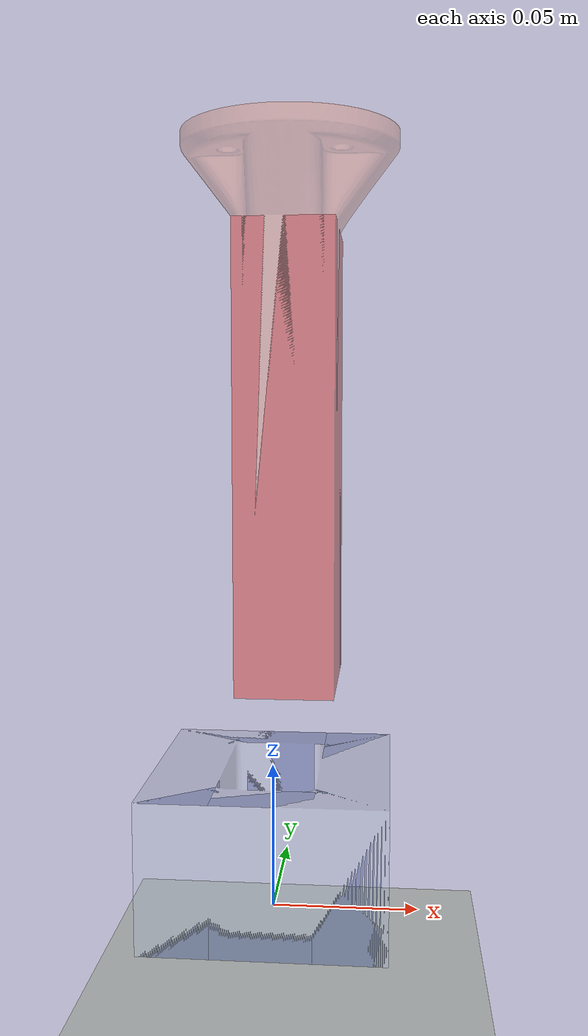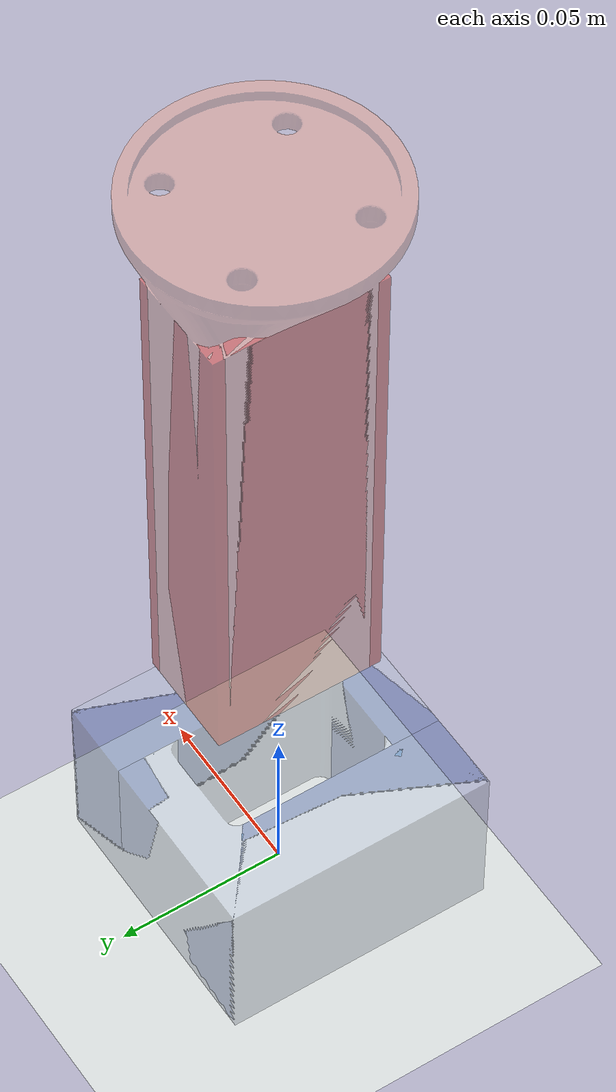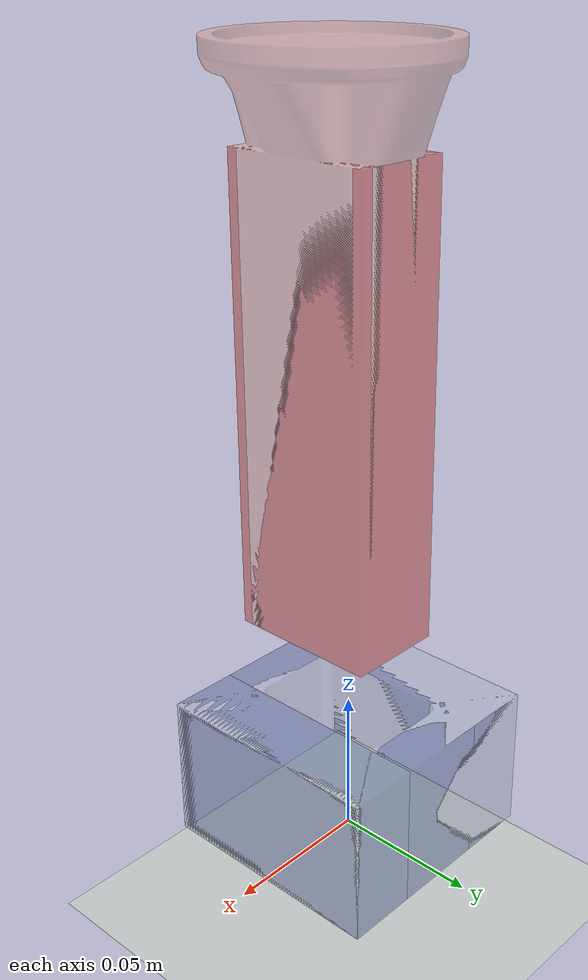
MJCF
<mujoco model="rect_peg_in_hole_mesh_proxy_chamfer_soft">

  <compiler angle="radian"
            meshdir="../urdf/meshes"/>

  <option timestep="0.005"
          solver="Newton"
          iterations="10"
          ls_iterations="50"
          gravity="0 0 0"
          cone="pyramidal"/>

  <custom>
    <numeric data="56" name="max_contact_points"/>
    <numeric data="56" name="max_geom_pairs"/>
  </custom>

  <visual>
    <global offwidth="1280" offheight="900"/>
    <headlight ambient="0.35 0.35 0.35" diffuse="0.65 0.65 0.65" specular="0.1 0.1 0.1"/>
  </visual>

  <asset>
    <mesh name="rectangular_peg_mesh" file="rectangular_peg.obj"/>
    <mesh name="rectangular_hole_mesh" file="rectangular_hole.obj"/>

    <texture name="checker" type="2d" builtin="checker"
             width="512" height="512"
             rgb1="0.92 0.92 0.88" rgb2="0.68 0.72 0.76"/>
    <material name="checker_mat" texture="checker" texrepeat="10 10" reflectance="0.15"/>
  </asset>

  <default>
    <geom condim="3"
          friction="1.0 0.005 0.0001"
          solref="0.03 1"
          solimp="0 0.9 0.01 0.5 2"/>
  </default>

  <worldbody>
    <light name="key_light" pos="0.35 -0.55 1.0" dir="-0.35 0.55 -1"/>
    <geom name="floor"
          type="plane"
          pos="0 0 -0.026"
          size="0.5 0.5 0.01"
          contype="0"
          conaffinity="0"
          material="checker_mat"/>

    <!-- Visual-only OBJ. Collision is supplied by the four proxy boxes below. -->
    <geom name="hole_visual"
          type="mesh"
          mesh="rectangular_hole_mesh"
          pos="0 0 0"
          contype="0"
          conaffinity="0"
          rgba="0.68 0.73 0.82 0.35"/>

    <!--
      rectangular_hole.obj bounds:
      - outer half-widths: x=0.04 m, y=0.04 m
      - maximum opening envelope: x=0.0162 m, y=0.0252 m
      - height: z=0.05 m
    -->
    <geom name="hole_proxy_pos_x_collision"
          type="box"
          pos="0.0281 0 0.025"
          size="0.0119 0.04 0.025"
          contype="1"
          conaffinity="1"
          rgba="0.14 0.25 0.55 0.35"/>
    <geom name="hole_proxy_neg_x_collision"
          type="box"
          pos="-0.0281 0 0.025"
          size="0.0119 0.04 0.025"
          contype="1"
          conaffinity="1"
          rgba="0.14 0.25 0.55 0.35"/>
    <geom name="hole_proxy_pos_y_collision"
          type="box"
          pos="0 0.0326 0.025"
          size="0.0162 0.0074 0.025"
          contype="1"
          conaffinity="1"
          rgba="0.14 0.25 0.55 0.35"/>
    <geom name="hole_proxy_neg_y_collision"
          type="box"
          pos="0 -0.0326 0.025"
          size="0.0162 0.0074 0.025"
          contype="1"
          conaffinity="1"
          rgba="0.14 0.25 0.55 0.35"/>

    <geom name="hole_proxy_chamfer_pos_x_pos_y_collision"
          type="box"
          pos="0.01745 0.02645 0.025"
          euler="0 0 -0.7853981633974483"
          size="0.0032 0.0012 0.025"
          contype="1"
          conaffinity="1"
          rgba="0.10 0.35 0.65 0.45"/>
    <geom name="hole_proxy_chamfer_neg_x_pos_y_collision"
          type="box"
          pos="-0.01745 0.02645 0.025"
          euler="0 0 0.7853981633974483"
          size="0.0032 0.0012 0.025"
          contype="1"
          conaffinity="1"
          rgba="0.10 0.35 0.65 0.45"/>
    <geom name="hole_proxy_chamfer_pos_x_neg_y_collision"
          type="box"
          pos="0.01745 -0.02645 0.025"
          euler="0 0 0.7853981633974483"
          size="0.0032 0.0012 0.025"
          contype="1"
          conaffinity="1"
          rgba="0.10 0.35 0.65 0.45"/>
    <geom name="hole_proxy_chamfer_neg_x_neg_y_collision"
          type="box"
          pos="-0.01745 -0.02645 0.025"
          euler="0 0 -0.7853981633974483"
          size="0.0032 0.0012 0.025"
          contype="1"
          conaffinity="1"
          rgba="0.10 0.35 0.65 0.45"/>

    <body name="peg" pos="0.006 0 0.23" euler="0 0 1.5707963267948966">
      <joint name="insertion_slide" type="slide" axis="0 0 1"/>

      <!-- Visual-only OBJ, with the same rotation used by the mesh scene. -->
      <geom name="peg_visual"
            type="mesh"
            mesh="rectangular_peg_mesh"
            euler="1.5707963267948966 0 0"
            density="0"
            contype="0"
            conaffinity="0"
            rgba="0.95 0.58 0.44 0.35"/>

      <geom name="peg_proxy_collision"
            type="box"
            pos="0 0 -0.075"
            size="0.025 0.016 0.075"
            mass="0.49468"
            contype="1"
            conaffinity="1"
            rgba="0.85 0.18 0.12 0.45"/>
    </body>
  </worldbody>

  <actuator>
    <velocity name="insertion_velocity_servo"
              joint="insertion_slide"
              kv="20"
              ctrllimited="true"
              ctrlrange="-1 1"/>
  </actuator>
</mujoco>
